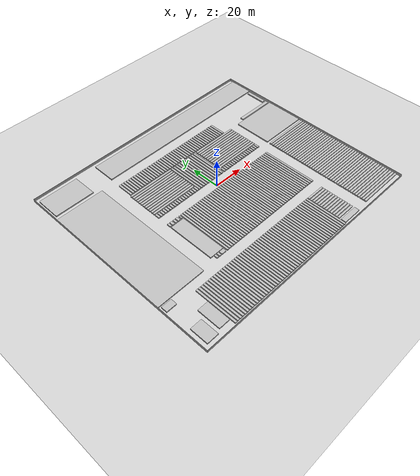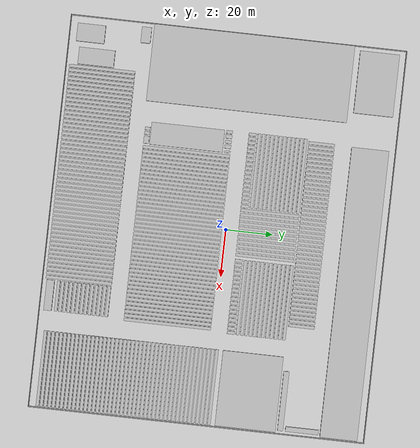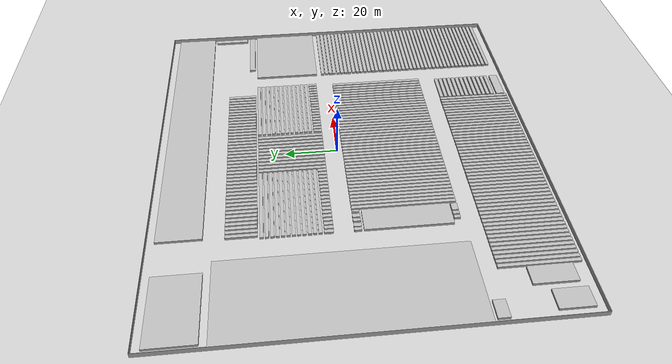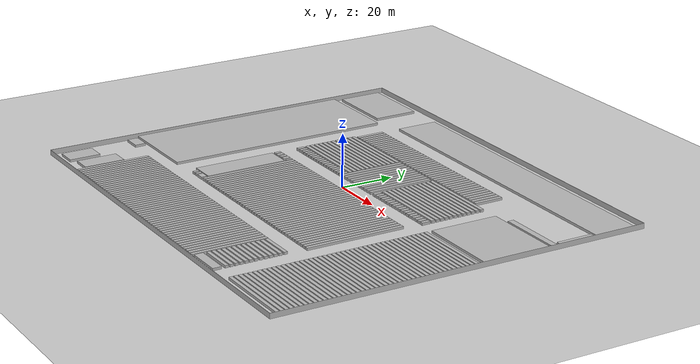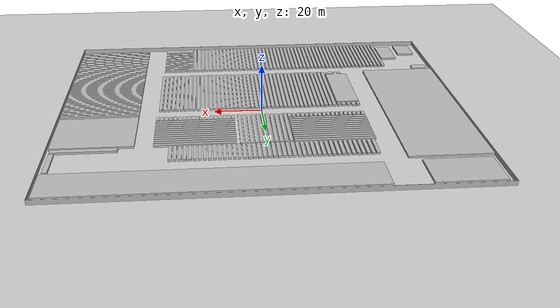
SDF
<?xml version="1.0"?>
<sdf version="1.6">
  <world name="default">

    <include>
      <uri>model://ground_plane</uri>
    </include>

    <include>
      <uri>model://sun</uri>
    </include>

    <scene>
      <shadows>false</shadows>
    </scene>

    <gui fullscreen='0'>
      <camera name='user_camera'>
        <pose frame=''>0.319654 -0.235002 9.29441 0 1.5138 0.009599</pose>
        <view_controller>orbit</view_controller>
        <projection_type>perspective</projection_type>
      </camera>
    </gui>

    <physics type="ode">
      <real_time_update_rate>1000.0</real_time_update_rate>
      <max_step_size>0.001</max_step_size>
      <real_time_factor>1</real_time_factor>
      <ode>
        <solver>
          <type>quick</type>
          <iters>150</iters>
          <precon_iters>0</precon_iters>
          <sor>1.400000</sor>
          <use_dynamic_moi_rescaling>1</use_dynamic_moi_rescaling>
        </solver>
        <constraints>
          <cfm>0.00001</cfm>
          <erp>0.2</erp>
          <contact_max_correcting_vel>2000.000000</contact_max_correcting_vel>
          <contact_surface_layer>0.01000</contact_surface_layer>
        </constraints>
      </ode>
    </physics>
    <model name='my_mesh'>
      <pose>0 0 -2.0 0 -0 0</pose>
      <static>1</static>
      <link name='body'>
        <visual name='visual'>
          <geometry>
            <mesh>
              <uri>file://src/turtlebot3_simulations/turtlebot3_gazebo/worlds/uber.obj</uri>
            </mesh>
          </geometry>
        </visual>
        <collision name = "collision">
          <geometry>
            <mesh>
              <uri>file://src/turtlebot3_simulations/turtlebot3_gazebo/worlds/uber.obj</uri>
            </mesh>
          </geometry>
        </collision>
        <self_collide>1</self_collide>
        <enable_wind>0</enable_wind>
        <kinematic>0</kinematic>
      </link>
    </model>
  </world>
</sdf>
